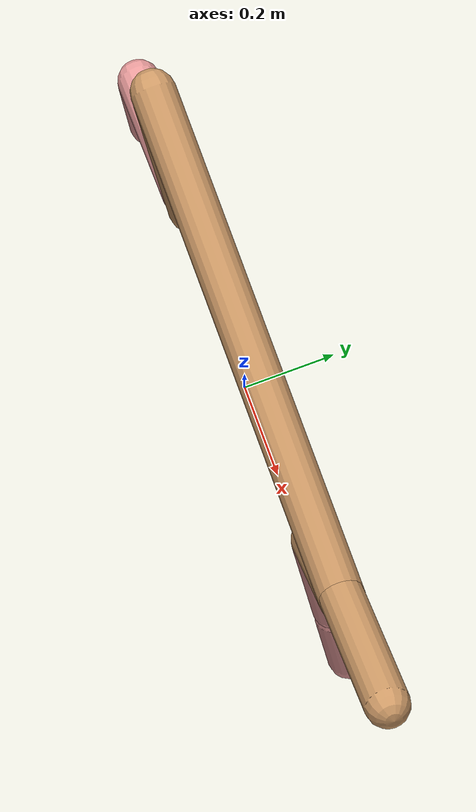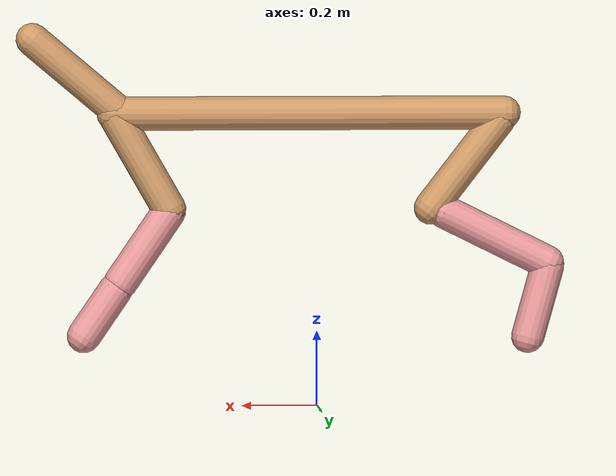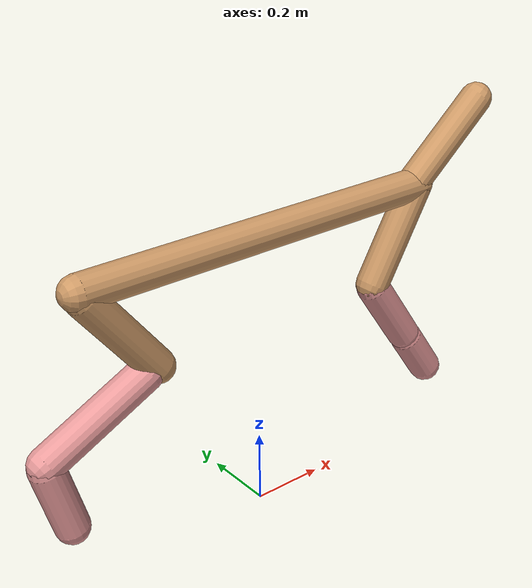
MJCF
<mujoco model="cheetah">
  <compiler angle="radian" coordinate="local" inertiafromgeom="true" settotalmass="14" />
  <default>
    <joint armature=".1" damping=".01" limited="true" solimplimit="0 .8 .03" solreflimit=".02 1" stiffness="8" />
    <geom conaffinity="0" condim="3" contype="1" friction="0.8 .1 .1" rgba="0.8 0.6 .4 1" solimp="0.0 0.8 0.01" solref="0.02 1" />
    <motor ctrllimited="true" ctrlrange="-1 1" />
  </default>
  <size nstack="300000" nuser_geom="1" />
  <option gravity="0 0 -9.81" timestep="0.01" />
  <worldbody>
    <body name="torso" pos="0.0 0.0 0.7807224103057058">
      <joint armature="0" axis="1 0 0" damping="0" limited="false" name="ignorex" pos="0 0 0" stiffness="0" type="slide" />
      <joint armature="0" axis="0 0 1" damping="0" limited="false" name="ignorez" pos="0 0 0" stiffness="0" type="slide" />
      <joint armature="0" axis="0 1 0" damping="0" limited="false" name="ignorey" pos="0 0 0" stiffness="0" type="hinge" />
      <geom fromto="-0.5 0.0 0.0 0.5403125446700576 0.0 0.0" name="torso" size="0.04514141994979286" type="capsule" />
      <geom axisangle="0 1 0 .87" name="head" pos="0.6403125446700576 0.0 0.1" size="0.04376416757465983 0.15" type="capsule" />

      <body name="bthigh" pos="-.5 0 0">
        <joint axis="0 1 0" damping="6" name="bthigh" pos="0 0 0" range="-.52 1.05" stiffness="240" type="hinge" />
        <geom axisangle="0 1 0 -3.8" name="bthigh" pos="0.10343913794429649 0.0 -0.13447087932758542" size="0.04481460489127802 0.1506406056201201" type="capsule" />
        <body name="bshin" pos="0.16687827588859297 0.0 -0.25894175865517083">
          <joint axis="0 1 0" damping="4.5" name="bshin" pos="0 0 0" range="-.785 .785" stiffness="180" type="hinge" />
          <geom axisangle="0 1 0 -2.03" name="bshin" pos="-0.1452190803865611 0.0 -0.07260954019328054" rgba="0.9 0.6 0.6 1" size="0.04481460489127802 0.1558351092621932" type="capsule" />
          <body name="bfoot" pos="-0.2904381607731222 0.0 -0.1452190803865611">
            <joint axis="0 1 0" damping="3" name="bfoot" pos="0 0 0" range="-.4 .785" stiffness="120" type="hinge" />
            <geom axisangle="0 1 0 -.27" name="bfoot" pos="0.03108043481993667 0.0 -0.10049340591779524" rgba="0.9 0.6 0.6 1" size="0.04481460489127802 0.09765666847097441" type="capsule" />
            <inertial mass="10" />
          </body>
        </body>
      </body>
      <body name="fthigh" pos="0.5403125446700576 0.0 0.0">
        <joint axis="0 1 0" damping="4.5" name="fthigh" pos="0 0 0" range="-1.5 0.8" stiffness="180" type="hinge" />
        <geom axisangle="0 1 0 .52" name="fthigh" pos="-0.0756585773297564 0.0 -0.12970041827958237" size="0.04524044408449619 0.14423020980194445" type="capsule" />
        <body name="fshin" pos="-0.1513171546595128 0.0 -0.25940083655916474">
          <joint axis="0 1 0" damping="3" name="fshin" pos="0 0 0" range="-1.2 1.1" stiffness="120" type="hinge" />
          <geom axisangle="0 1 0 -.6" name="fshin" pos="0.07024037042265603 0.0 -0.09725589750829296" rgba="0.9 0.6 0.6 1" size="0.04524044408449619 0.11495039277448203" type="capsule" />
          <body name="ffoot" pos="0.14048074084531206 0.0 -0.19451179501658591">
            <joint axis="0 1 0" damping="1.5" name="ffoot" pos="0 0 0" range="-3.1 -0.3" stiffness="60" type="hinge" />
            <geom axisangle="0 1 0 -.6" name="ffoot" pos="0.04819622168549722 0.0 -0.07497190039966235" rgba="0.9 0.6 0.6 1" size="0.04524044408449619 0.07591063673786551" type="capsule" />
            <inertial mass="10" />
          </body>
        </body>
      </body>
    </body>
  </worldbody>
  <actuator>
    <motor gear="120" joint="bthigh" name="bthigh" />
    <motor gear="90" joint="bshin" name="bshin" />
    <motor gear="60" joint="bfoot" name="bfoot" />
    <motor gear="120" joint="fthigh" name="fthigh" />
    <motor gear="60" joint="fshin" name="fshin" />
    <motor gear="30" joint="ffoot" name="ffoot" />
  </actuator>
</mujoco>
